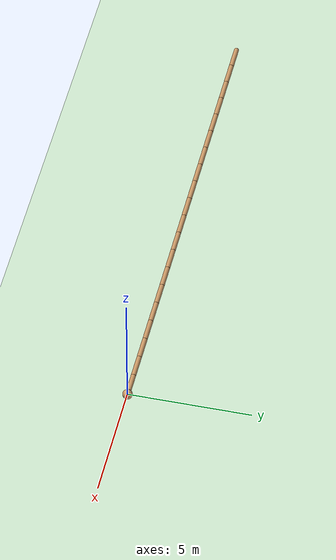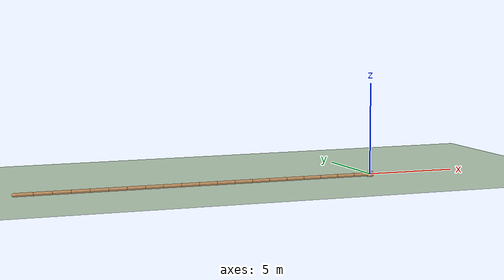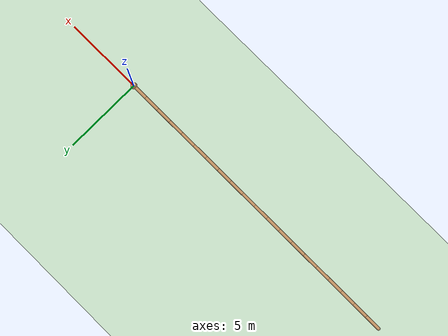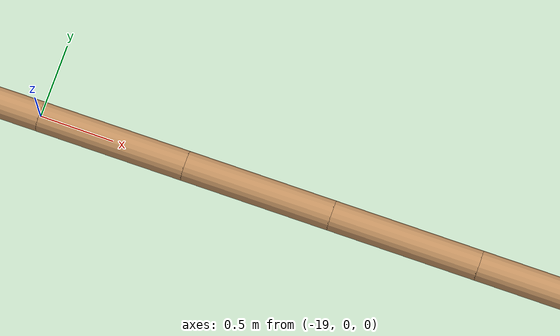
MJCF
<mujoco model="swimmer">
  <compiler angle="degree" coordinate="local" inertiafromgeom="true"/>
  <option collision="predefined" density="4000" integrator="RK4" timestep="0.01" viscosity="0.1"/>
  <default>
    <geom conaffinity="1" condim="1" contype="1" material="geom" rgba="0.8 0.6 .4 1"/>
    <joint armature='0.1'  />
  </default>
  <asset>
    <texture builtin="gradient" height="100" rgb1="1 1 1" rgb2="0 0 0" type="skybox" width="100"/>
    <texture builtin="flat" height="1278" mark="cross" markrgb="1 1 1" name="texgeom" random="0.01" rgb1="0.8 0.6 0.4" rgb2="0.8 0.6 0.4" type="cube" width="127"/>
    <texture builtin="checker" height="100" name="texplane" rgb1="0 0 0" rgb2="0.8 0.8 0.8" type="2d" width="100"/>
    <material name="MatPlane" reflectance="0.5" shininess="1" specular="1" texrepeat="30 30" texture="texplane"/>
    <material name="geom" texture="texgeom" texuniform="true"/>
  </asset>
  <worldbody>
    <light cutoff="100" diffuse="1 1 1" dir="-0 0 -1.3" directional="true" exponent="1" pos="0 0 1.3" specular=".1 .1 .1"/>
    <geom conaffinity="1" condim="3" material="MatPlane" name="floor" pos="0 0 -0.1" rgba="0.8 0.9 0.8 1" size="40 40 0.1" type="plane"/>
    <!--  ================= SWIMMER ================= /-->
    <body name="head" pos="0 0 0">
      <geom density="1000" size="0.2" type="sphere"/>
      <joint axis="1 0 0" name="slider1" pos="0 0 0" type="slide"/>
      <joint axis="0 1 0" name="slider2" pos="0 0 0" type="slide"/>
      <body name="tail1" pos="0 0 0">
        <geom density="1000" fromto="0 0 0 -1 0 0" size="0.1" type="capsule"/>
        <joint axis="0 0 1" limited="true" name="rot2" pos="0 0 0" range="-100 100" type="hinge"/>
        <body name="tail2" pos="-1 0 0">
          <geom density="1000" fromto="0 0 0 -1 0 0" size="0.1" type="capsule"/>
          <joint axis="0 0 1" limited="true" name="rot3" pos="0 0 0" range="-100 100" type="hinge"/>
          <body name="tail3" pos="-1 0 0">
            <geom density="1000" fromto="0 0 0 -1 0 0" size="0.1" type="capsule"/>
            <joint axis="0 0 1" limited="true" name="rot4" pos="0 0 0" range="-100 100" type="hinge"/>
            <body name="tail4" pos="-1 0 0">
              <geom density="1000" fromto="0 0 0 -1 0 0" size="0.1" type="capsule"/>
              <joint axis="0 0 1" limited="true" name="rot5" pos="0 0 0" range="-100 100" type="hinge"/>
              <body name="tail5" pos="-1 0 0">
                <geom density="1000" fromto="0 0 0 -1 0 0" size="0.1" type="capsule"/>
                <joint axis="0 0 1" limited="true" name="rot6" pos="0 0 0" range="-100 100" type="hinge"/>
                <body name="tail6" pos="-1 0 0">
                  <geom density="1000" fromto="0 0 0 -1 0 0" size="0.1" type="capsule"/>
                  <joint axis="0 0 1" limited="true" name="rot7" pos="0 0 0" range="-100 100" type="hinge"/>
                  <body name="tail7" pos="-1 0 0">
                    <geom density="1000" fromto="0 0 0 -1 0 0" size="0.1" type="capsule"/>
                    <joint axis="0 0 1" limited="true" name="rot8" pos="0 0 0" range="-100 100" type="hinge"/>
                    <body name="tail8" pos="-1 0 0">
                      <geom density="1000" fromto="0 0 0 -1 0 0" size="0.1" type="capsule"/>
                      <joint axis="0 0 1" limited="true" name="rot9" pos="0 0 0" range="-100 100" type="hinge"/>
                      <body name="tail9" pos="-1 0 0">
                        <geom density="1000" fromto="0 0 0 -1 0 0" size="0.1" type="capsule"/>
                        <joint axis="0 0 1" limited="true" name="rot10" pos="0 0 0" range="-100 100" type="hinge"/>
                        <body name="tail10" pos="-1 0 0">
                          <geom density="1000" fromto="0 0 0 -1 0 0" size="0.1" type="capsule"/>
                          <joint axis="0 0 1" limited="true" name="rot11" pos="0 0 0" range="-100 100" type="hinge"/>
                          <body name="tail11" pos="-1 0 0">
                            <geom density="1000" fromto="0 0 0 -1 0 0" size="0.1" type="capsule"/>
                            <joint axis="0 0 1" limited="true" name="rot12" pos="0 0 0" range="-100 100" type="hinge"/>
                            <body name="tail12" pos="-1 0 0">
                              <geom density="1000" fromto="0 0 0 -1 0 0" size="0.1" type="capsule"/>
                              <joint axis="0 0 1" limited="true" name="rot13" pos="0 0 0" range="-100 100" type="hinge"/>
                              <body name="tail13" pos="-1 0 0">
                                <geom density="1000" fromto="0 0 0 -1 0 0" size="0.1" type="capsule"/>
                                <joint axis="0 0 1" limited="true" name="rot14" pos="0 0 0" range="-100 100" type="hinge"/>
                                <body name="tail14" pos="-1 0 0">
                                  <geom density="1000" fromto="0 0 0 -1 0 0" size="0.1" type="capsule"/>
                                  <joint axis="0 0 1" limited="true" name="rot15" pos="0 0 0" range="-100 100" type="hinge"/>
                                  <body name="tail15" pos="-1 0 0">
                                    <geom density="1000" fromto="0 0 0 -1 0 0" size="0.1" type="capsule"/>
                                    <joint axis="0 0 1" limited="true" name="rot16" pos="0 0 0" range="-100 100" type="hinge"/>
                                    <body name="tail16" pos="-1 0 0">
                                      <geom density="1000" fromto="0 0 0 -1 0 0" size="0.1" type="capsule"/>
                                      <joint axis="0 0 1" limited="true" name="rot17" pos="0 0 0" range="-100 100" type="hinge"/>
                                      <body name="tail17" pos="-1 0 0">
                                        <geom density="1000" fromto="0 0 0 -1 0 0" size="0.1" type="capsule"/>
                                        <joint axis="0 0 1" limited="true" name="rot18" pos="0 0 0" range="-100 100" type="hinge"/>
                                        <body name="tail18" pos="-1 0 0">
                                          <geom density="1000" fromto="0 0 0 -1 0 0" size="0.1" type="capsule"/>
                                          <joint axis="0 0 1" limited="true" name="rot19" pos="0 0 0" range="-100 100" type="hinge"/>
                                          <body name="tail19" pos="-1 0 0">
                                            <geom density="1000" fromto="0 0 0 -1 0 0" size="0.1" type="capsule"/>
                                            <joint axis="0 0 1" limited="true" name="rot20" pos="0 0 0" range="-100 100" type="hinge"/>
                                            <body name="tail20" pos="-1 0 0">
                                              <geom density="1000" fromto="0 0 0 -1 0 0" size="0.1" type="capsule"/>
                                              <joint axis="0 0 1" limited="true" name="rot21" pos="0 0 0" range="-100 100" type="hinge"/>
                                            </body>
                                          </body>
                                        </body>
                                      </body>
                                    </body>
                                  </body>
                                </body>
                              </body>
                            </body>
                          </body>
                        </body>
                      </body>
                    </body>
                  </body>
                </body>
              </body>
            </body>
          </body>
        </body>
      </body>
    </body>
  </worldbody>
  <actuator>
    <motor ctrllimited="true" ctrlrange="-1 1" gear="150.0" joint="rot2"/>
    <motor ctrllimited="true" ctrlrange="-1 1" gear="150.0" joint="rot3"/>
    <motor ctrllimited="true" ctrlrange="-1 1" gear="150.0" joint="rot4"/>
    <motor ctrllimited="true" ctrlrange="-1 1" gear="150.0" joint="rot5"/>
    <motor ctrllimited="true" ctrlrange="-1 1" gear="150.0" joint="rot6"/>
    <motor ctrllimited="true" ctrlrange="-1 1" gear="150.0" joint="rot7"/>
    <motor ctrllimited="true" ctrlrange="-1 1" gear="150.0" joint="rot8"/>
    <motor ctrllimited="true" ctrlrange="-1 1" gear="150.0" joint="rot9"/>
    <motor ctrllimited="true" ctrlrange="-1 1" gear="150.0" joint="rot10"/>
    <motor ctrllimited="true" ctrlrange="-1 1" gear="150.0" joint="rot11"/>
    <motor ctrllimited="true" ctrlrange="-1 1" gear="150.0" joint="rot12"/>
    <motor ctrllimited="true" ctrlrange="-1 1" gear="150.0" joint="rot13"/>
    <motor ctrllimited="true" ctrlrange="-1 1" gear="150.0" joint="rot14"/>
    <motor ctrllimited="true" ctrlrange="-1 1" gear="150.0" joint="rot15"/>
    <motor ctrllimited="true" ctrlrange="-1 1" gear="150.0" joint="rot16"/>
    <motor ctrllimited="true" ctrlrange="-1 1" gear="150.0" joint="rot17"/>
    <motor ctrllimited="true" ctrlrange="-1 1" gear="150.0" joint="rot18"/>
    <motor ctrllimited="true" ctrlrange="-1 1" gear="150.0" joint="rot19"/>
    <motor ctrllimited="true" ctrlrange="-1 1" gear="150.0" joint="rot20"/>
  </actuator>
</mujoco>
